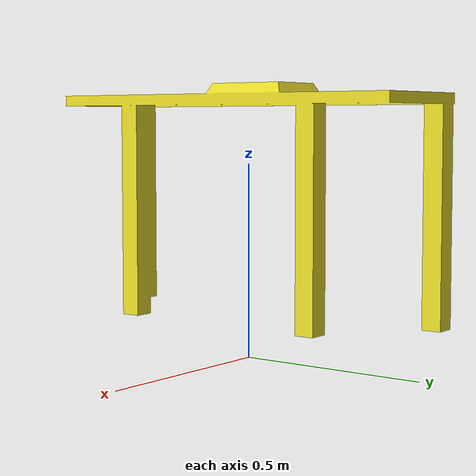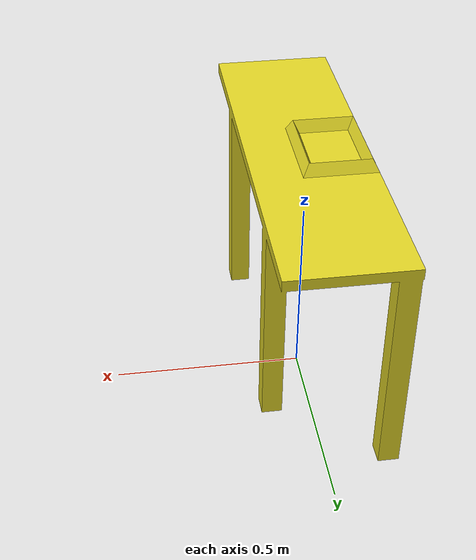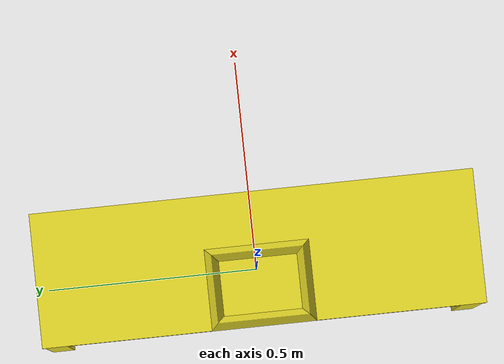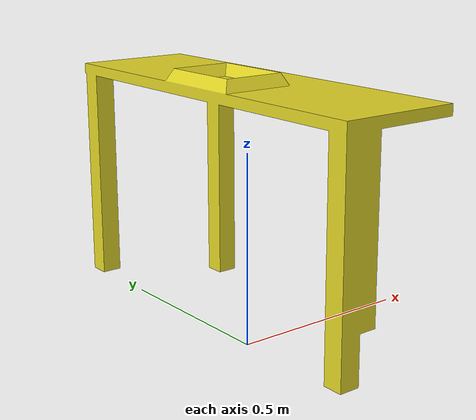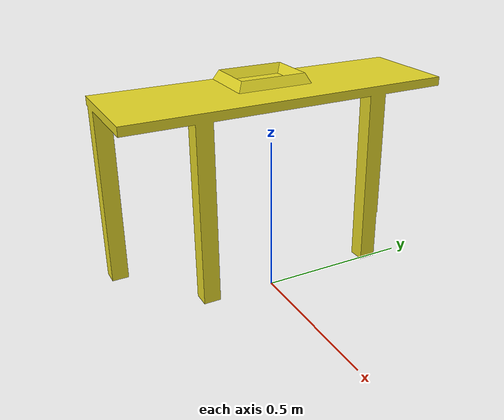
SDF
<?xml version="1.0" ?>
<sdf version="1.5">
  <model name="Table_AT200">
    <link name="link">
      <pose>0 0 0.05 0 0 -1.57079632679</pose>
      <inertial>
        <pose>0 0 0.4 0 0 0</pose>
        <mass>14.0</mass>
	  <inertia>
	    <ixx>0.9566667</ixx>
	    <ixy>0.0</ixy>
	    <ixz>0.0</ixz>
	    <iyy>0.2479167</iyy>
	    <iyz>0.0</iyz>
	    <izz>1.18125</izz>
	  </inertia>
      </inertial>
      <collision name="collision">
        <pose>0 0 0 0 0 0</pose>
        <geometry>
          <mesh>
            <uri>model://Table_AT200/meshes/Table_Assy.STL</uri>
          </mesh>
        </geometry>
      </collision>
      <visual name="visual">
        <pose>0 0 0 0 0 0</pose>
        <geometry>
          <mesh>
            <uri>model://Table_AT200/meshes/Table_Assy.STL</uri>
          </mesh>
        </geometry>
        <material>
          <script>
            <uri>file://media/materials/scripts/gazebo.material</uri>
            <name>Gazebo/Yellow</name>
          </script>
        </material>
      </visual>
    </link>
  </model>
</sdf>
